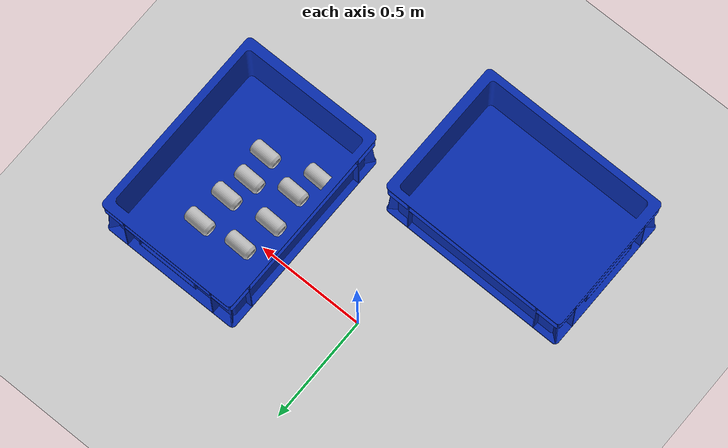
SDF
<sdf version="1.7">
 <world name="default">
  <light name="sun" type="directional">
   <pose>0 0 10 0 -0 0</pose>
   <diffuse>0.8 0.8 0.8 1</diffuse>
   <specular>0.2 0.2 0.2 1</specular>
   <attenuation>
    <range>1000</range>
    <constant>0.9</constant>
    <linear>0.01</linear>
    <quadratic>0.001</quadratic>
   </attenuation>
   <direction>-0.5 0.1 -0.9</direction>
   <spot><inner_angle>0</inner_angle><outer_angle>0</outer_angle><falloff>0</falloff></spot>
  </light>
  <model name="ground_plane">
   <static>1</static>
   <link name="link">
    <collision name="collision">
     <geometry><plane><normal>0 0 1</normal><size>100 100</size></plane></geometry>
     <surface>
      <contact><collide_bitmask>65535</collide_bitmask></contact>
      <friction><ode><mu>100</mu><mu2>50</mu2></ode></friction>
     </surface>
    </collision>
    <visual name="visual">
     <cast_shadows>0</cast_shadows>
     <geometry><plane><normal>0 0 1</normal><size>100 100</size></plane></geometry>
     <material>
      <script><uri>file://media/materials/scripts/gazebo.material</uri><name>Gazebo/Grey</name></script>
     </material>
    </visual>
   </link>
  </model>
  <gravity>0 0 -9.8</gravity>
  <magnetic_field>6e-06 2.3e-05 -4.2e-05</magnetic_field>
  <atmosphere type="adiabatic"/>
  <physics type="ode">
   <max_step_size>0.001</max_step_size>
   <real_time_factor>1</real_time_factor>
   <real_time_update_rate>1000</real_time_update_rate>
  </physics>
  <scene><ambient>0.4 0.4 0.4 1</ambient><background>0.7 0.7 0.7 1</background><shadows>1</shadows></scene>
  <spherical_coordinates>
   <surface_model>EARTH_WGS84</surface_model>
   <latitude_deg>0</latitude_deg>
   <longitude_deg>0</longitude_deg>
   <elevation>0</elevation>
   <heading_deg>0</heading_deg>
  </spherical_coordinates>
  <model name="coca_cola">
   <link name="link">
    <pose>0 0 0.115 0 -0 0</pose>
    <inertial>
     <mass>0.39</mass>
     <inertia><ixx>0.00058</ixx><ixy>0</ixy><ixz>0</ixz><iyy>0.00058</iyy><iyz>0</iyz><izz>0.00019</izz></inertia>
    </inertial>
    <collision name="collision">
     <geometry><cylinder><radius>0.0301625</radius><length>0.12065</length></cylinder></geometry>
    </collision>
    <visual name="bodyMesh">
     <geometry><mesh><uri>model://coca_cola/meshes/coke.dae</uri><scale>1 1 1</scale></mesh></geometry>
    </visual>
   </link>
   <pose>0.533611 -0.275435 0.450876 1.5708 -1.38168 -1.60188</pose>
  </model>
  <model name="dropoff_box">
   <static>1</static>
   <link name="link">
    <inertial>
     <mass>1</mass>
     <inertia>
      <ixx>0.0755262</ixx>
      <ixy>0</ixy>
      <ixz>0</ixz>
      <iyy>0.0441608</iyy>
      <iyz>0</iyz>
      <izz>0.103304</izz>
     </inertia>
    </inertial>
    <collision name="collision">
     <geometry><mesh><uri>model://dropoff_box/meshes/box_v1.stl</uri><scale>1 1 1</scale></mesh></geometry>
     <surface>
      <friction><ode><mu>30</mu><mu2>30</mu2></ode></friction>
      <contact>
       <ode>
        <soft_cfm>0</soft_cfm>
        <soft_erp>0.2</soft_erp>
        <kp>1e+13</kp>
        <kd>1</kd>
        <max_vel>0.01</max_vel>
        <min_depth>0</min_depth>
       </ode>
      </contact>
     </surface>
    </collision>
    <visual name="visual">
     <geometry><mesh><uri>model://dropoff_box/meshes/box_v1.dae</uri><scale>1 1 1</scale></mesh></geometry>
    </visual>
    <velocity_decay><linear>0</linear><angular>0</angular></velocity_decay>
   </link>
   <pose>0.628615 -0.03744 0.400334 0 -0 0</pose>
  </model>
  <model name="Box_24x15W">
   <link name="Wall">
    <pose>0 0 0.1985 0 -0 0</pose>
    <inertial>
     <mass>5</mass>
     <inertia><ixx>0.1022</ixx><iyy>0.2197</iyy><izz>0.1905</izz><ixy>0</ixy><ixz>0</ixz><iyz>0</iyz></inertia>
    </inertial>
    <collision name="Wall_Collision"><geometry><box><size>0.608 0.296 0.397</size></box></geometry></collision>
    <visual name="Wall_Visual">
     <geometry><box><size>0.608 0.296 0.397</size></box></geometry>
     <material>
      <script><uri>file://media/materials/scripts/gazebo.material</uri><name>Gazebo/Grey</name></script>
      <ambient>1 1 1 1</ambient>
     </material>
    </visual>
   </link>
   <static>1</static>
   <pose>0.667526 -0.083673 0 0 0 -1.58037</pose>
  </model>
  <model name="coca_cola_clone_0_clone">
   <link name="link">
    <pose>0 0 0.115 0 -0 0</pose>
    <inertial>
     <mass>0.39</mass>
     <inertia><ixx>0.00058</ixx><ixy>0</ixy><ixz>0</ixz><iyy>0.00058</iyy><iyz>0</iyz><izz>0.00019</izz></inertia>
    </inertial>
    <collision name="collision">
     <geometry><cylinder><radius>0.0301625</radius><length>0.12065</length></cylinder></geometry>
    </collision>
    <visual name="bodyMesh">
     <geometry><mesh><uri>model://coca_cola/meshes/coke.dae</uri><scale>1 1 1</scale></mesh></geometry>
    </visual>
   </link>
   <pose>0.782265 0.161604 0.450876 -1.5708 -0.506339 1.54048</pose>
  </model>
  <model name="coca_cola_clone_0_clone_0">
   <link name="link">
    <pose>0 0 0.115 0 -0 0</pose>
    <inertial>
     <mass>0.39</mass>
     <inertia><ixx>0.00058</ixx><ixy>0</ixy><ixz>0</ixz><iyy>0.00058</iyy><iyz>0</iyz><izz>0.00019</izz></inertia>
    </inertial>
    <collision name="collision">
     <geometry><cylinder><radius>0.0301625</radius><length>0.12065</length></cylinder></geometry>
    </collision>
    <visual name="bodyMesh">
     <geometry><mesh><uri>model://coca_cola/meshes/coke.dae</uri><scale>1 1 1</scale></mesh></geometry>
    </visual>
   </link>
   <pose>0.767168 0.014645 0.450876 -1.5708 -0.506339 1.54048</pose>
  </model>
  <model name="coca_cola_clone_0_clone_1">
   <link name="link">
    <pose>0 0 0.115 0 -0 0</pose>
    <inertial>
     <mass>0.39</mass>
     <inertia><ixx>0.00058</ixx><ixy>0</ixy><ixz>0</ixz><iyy>0.00058</iyy><iyz>0</iyz><izz>0.00019</izz></inertia>
    </inertial>
    <collision name="collision">
     <geometry><cylinder><radius>0.0301625</radius><length>0.12065</length></cylinder></geometry>
    </collision>
    <visual name="bodyMesh">
     <geometry><mesh><uri>model://coca_cola/meshes/coke.dae</uri><scale>1 1 1</scale></mesh></geometry>
    </visual>
   </link>
   <pose>0.596389 0.134313 0.450876 -1.5708 -0.515102 1.54046</pose>
  </model>
  <model name="coca_cola_clone_0_clone_2">
   <link name="link">
    <pose>0 0 0.115 0 -0 0</pose>
    <inertial>
     <mass>0.39</mass>
     <inertia><ixx>0.00058</ixx><ixy>0</ixy><ixz>0</ixz><iyy>0.00058</iyy><iyz>0</iyz><izz>0.00019</izz></inertia>
    </inertial>
    <collision name="collision">
     <geometry><cylinder><radius>0.0301625</radius><length>0.12065</length></cylinder></geometry>
    </collision>
    <visual name="bodyMesh">
     <geometry><mesh><uri>model://coca_cola/meshes/coke.dae</uri><scale>1 1 1</scale></mesh></geometry>
    </visual>
   </link>
   <pose>0.564216 -0.014271 0.450876 -1.5708 -0.506339 1.54048</pose>
  </model>
  <model name="coca_cola_clone_0_clone_3">
   <link name="link">
    <pose>0 0 0.115 0 -0 0</pose>
    <inertial>
     <mass>0.39</mass>
     <inertia><ixx>0.00058</ixx><ixy>0</ixy><ixz>0</ixz><iyy>0.00058</iyy><iyz>0</iyz><izz>0.00019</izz></inertia>
    </inertial>
    <collision name="collision">
     <geometry><cylinder><radius>0.0301625</radius><length>0.12065</length></cylinder></geometry>
    </collision>
    <visual name="bodyMesh">
     <geometry><mesh><uri>model://coca_cola/meshes/coke.dae</uri><scale>1 1 1</scale></mesh></geometry>
    </visual>
   </link>
   <pose>0.742602 -0.095944 0.450876 -1.57079 -0.528291 1.54045</pose>
  </model>
  <model name="coca_cola_clone_0_clone_4">
   <link name="link">
    <pose>0 0 0.115 0 -0 0</pose>
    <inertial>
     <mass>0.39</mass>
     <inertia><ixx>0.00058</ixx><ixy>0</ixy><ixz>0</ixz><iyy>0.00058</iyy><iyz>0</iyz><izz>0.00019</izz></inertia>
    </inertial>
    <collision name="collision">
     <geometry><cylinder><radius>0.0301625</radius><length>0.12065</length></cylinder></geometry>
    </collision>
    <visual name="bodyMesh">
     <geometry><mesh><uri>model://coca_cola/meshes/coke.dae</uri><scale>1 1 1</scale></mesh></geometry>
    </visual>
   </link>
   <pose>0.575369 -0.165559 0.450876 -1.5708 -0.506339 1.54048</pose>
  </model>
  <model name="coca_cola_clone_0_clone_5">
   <link name="link">
    <pose>0 0 0.115 0 -0 0</pose>
    <inertial>
     <mass>0.39</mass>
     <inertia><ixx>0.00058</ixx><ixy>0</ixy><ixz>0</ixz><iyy>0.00058</iyy><iyz>0</iyz><izz>0.00019</izz></inertia>
    </inertial>
    <collision name="collision">
     <geometry><cylinder><radius>0.0301625</radius><length>0.12065</length></cylinder></geometry>
    </collision>
    <visual name="bodyMesh">
     <geometry><mesh><uri>model://coca_cola/meshes/coke.dae</uri><scale>1 1 1</scale></mesh></geometry>
    </visual>
   </link>
   <pose>0.760951 -0.215574 0.450876 -1.5708 -0.506339 1.54048</pose>
  </model>
  <model name="dropoff_box_clone">
   <static>1</static>
   <link name="link">
    <inertial>
     <mass>1</mass>
     <inertia>
      <ixx>0.0755262</ixx>
      <ixy>0</ixy>
      <ixz>0</ixz>
      <iyy>0.0441608</iyy>
      <iyz>0</iyz>
      <izz>0.103304</izz>
     </inertia>
    </inertial>
    <collision name="collision">
     <geometry><mesh><uri>model://dropoff_box/meshes/box_v1.stl</uri><scale>1 1 1</scale></mesh></geometry>
     <surface>
      <friction><ode><mu>30</mu><mu2>30</mu2></ode></friction>
      <contact>
       <ode>
        <soft_cfm>0</soft_cfm>
        <soft_erp>0.2</soft_erp>
        <kp>1e+13</kp>
        <kd>1</kd>
        <max_vel>0.01</max_vel>
        <min_depth>0</min_depth>
       </ode>
      </contact>
     </surface>
    </collision>
    <visual name="visual">
     <geometry><mesh><uri>model://dropoff_box/meshes/box_v1.dae</uri><scale>1 1 1</scale></mesh></geometry>
    </visual>
    <velocity_decay><linear>0</linear><angular>0</angular></velocity_decay>
   </link>
   <pose>-0.234598 -0.766986 0.028855 0 0 -1.57835</pose>
  </model>
  <plugin name="ros_link_attacher_plugin" filename="libgazebo_ros_link_attacher.so"/>
 </world>
</sdf>
